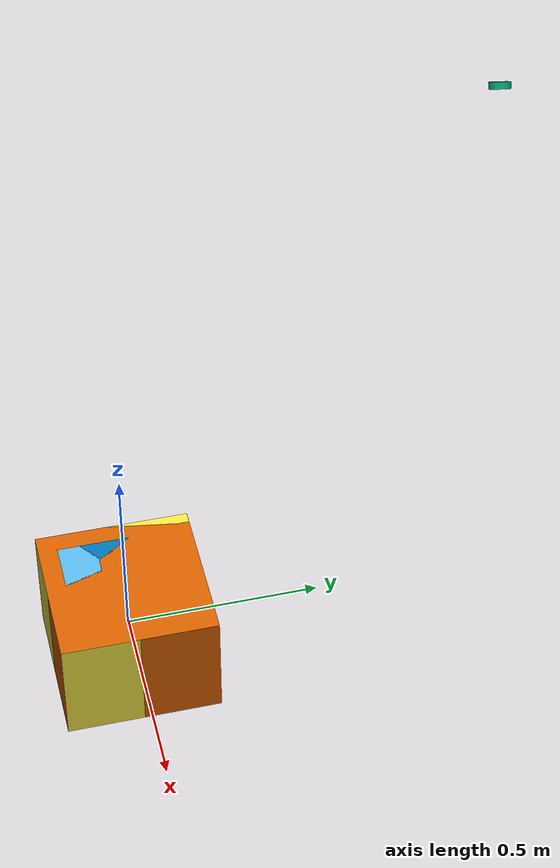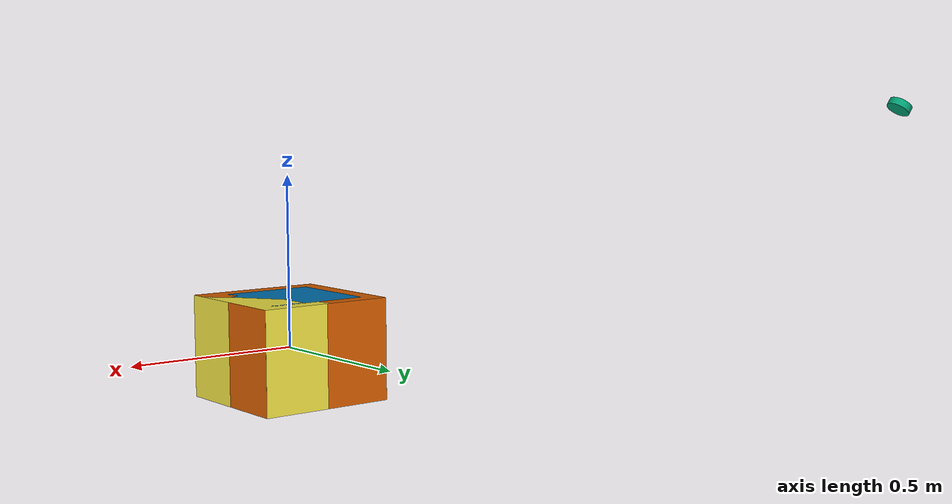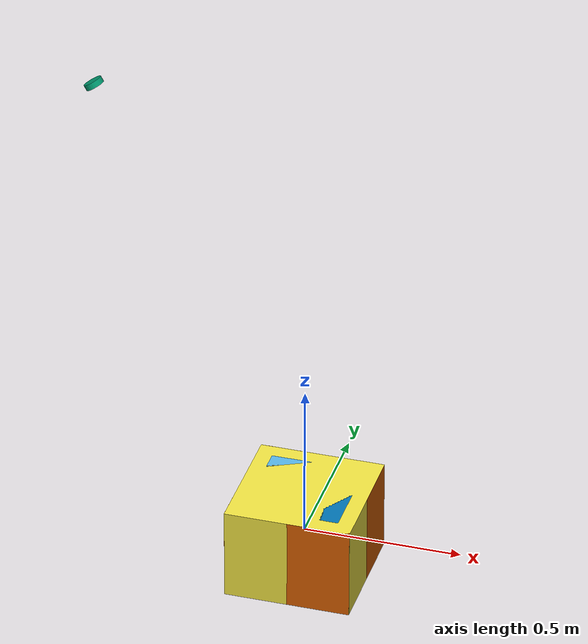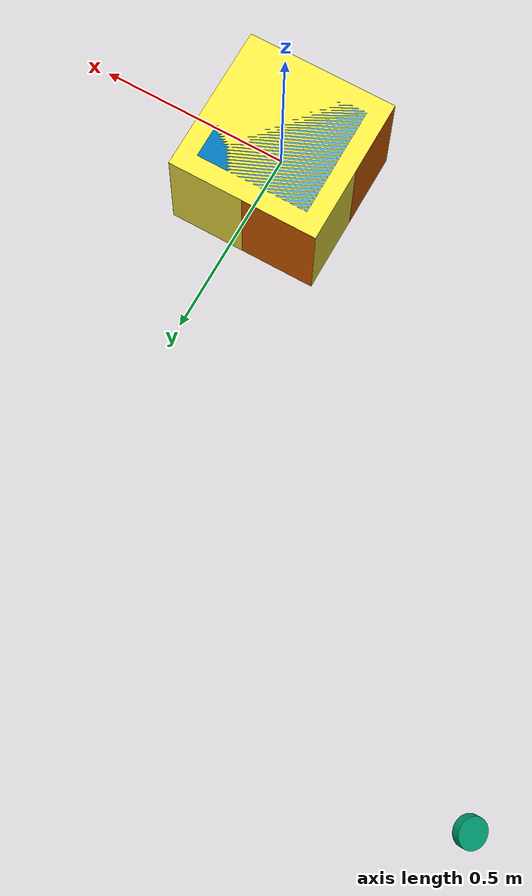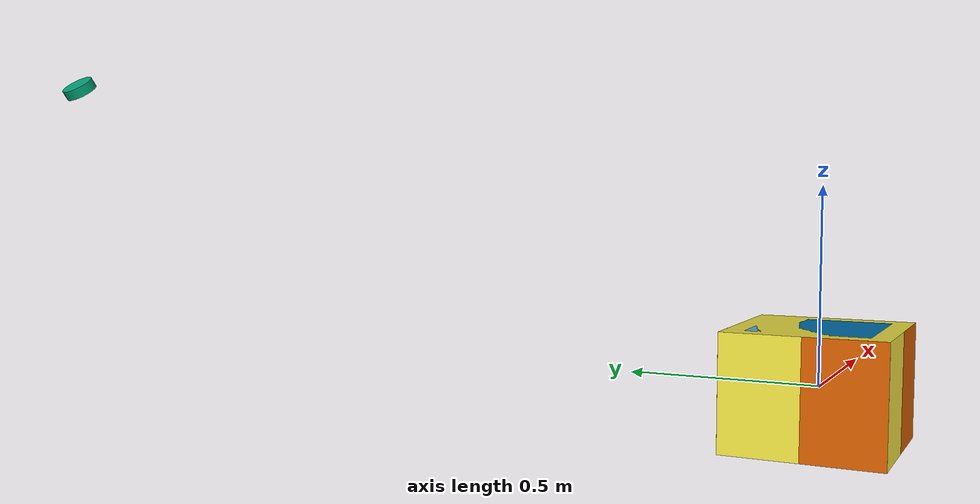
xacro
<?xml version="1.0" ?>
<robot name="gantry" xmlns:xacro="http://www.ros.org/wiki/xacro">
		<link name="gantry_base"/>

		<joint name="fixed" type="fixed">
			<parent link="gantry_base"/>
			<child link="horizontal_bar"/>
		</joint>

		<link name="horizontal_bar">
			<visual>
				<origin rpy="0 0 0" xyz="0 0 0"/>
			<geometry>
				<!--box size="2.5 0.3 0.3"/-->
				<box size="0.3 0.3 0.3"/>
			</geometry>
			</visual>
		</link>

		<joint name="camera_joint" type="fixed">
			<parent link="gantry_base"/>
			<child link="camera_link"/>
			<limit effort="1000" lower="-10" upper="10" velocity="10.0"/>
			<origin rpy="-2.56528861 -0.121632 -1.5708" xyz="-1.1 1.3 0.7"/>
		</joint>

		<link name="camera_link">
			<visual>
				<origion rpy="0 0 0" xyz="0 0 0"/>
				<geometry>
					<cylinder radius="0.032" length="0.02"/>
				</geometry>
			</visual>
		</link>

		<joint name="horizontal_extension" type="fixed"> <!--prismatic-->
			<parent link="horizontal_bar"/>
			<child link="horizontal_link"/>
			<limit effort="1000.0" lower="-1.0" upper="1.0" velocity="10.0"/>
			<!--origin rpy="3.141592 0 0" xyz="0 0 0"/--> <!--FLIPPED-->
			<origin rpy="0 0 0" xyz="0 0 0"/>
		</joint>

		<link name="horizontal_link">
			<visual>
				<origin rpy="0 0 0" xyz="0 0 0"/>
			<geometry>
				<box size="0.4 0.4 0.3"/>
			</geometry>
			</visual>
		</link>

		<joint name="vertical_horizontal_joint" type="fixed">
			<parent link="horizontal_link"/>
			<child link="vertical_bar"/>
		</joint>

		<link name="vertical_bar">
			<inertial>
				<origin rpy="0 0 1.57" xyz="0 0 0.2"/>
				<mass value="1"/>
				<inertia ixx="100"  ixy="0"  ixz="0" iyy="100" iyz="0" izz="100" />
			</inertial>
			<visual>
				<origin rpy="0 0 1.57" xyz="0 0 0"/>
				<geometry>
					<!--box size="2.5 0.3 0.3"/-->
					<box size="0.3 0.3 0.3"/>
				</geometry>
			</visual>
		</link>

		<joint name="vertical_extension" type="fixed"><!--prismatic-->
			<parent link="vertical_bar"/>
			<child link="vertical_link"/>
			<limit effort="1000.0" lower="-1.0" upper="1.0" velocity="10.0"/>
			<origin rpy="0 0 1.57" xyz="0 0 0"/>
		</joint>

		<link name="vertical_link">
			<visual>
				<origin rpy="0 0 0"/>
				<geometry>
					<box size="0.4 0.4 0.3"/>
				</geometry>
			</visual>
		</link>
</robot>
